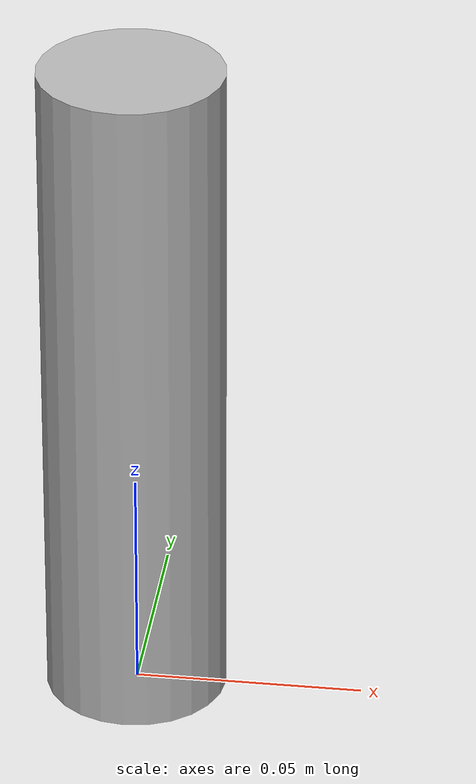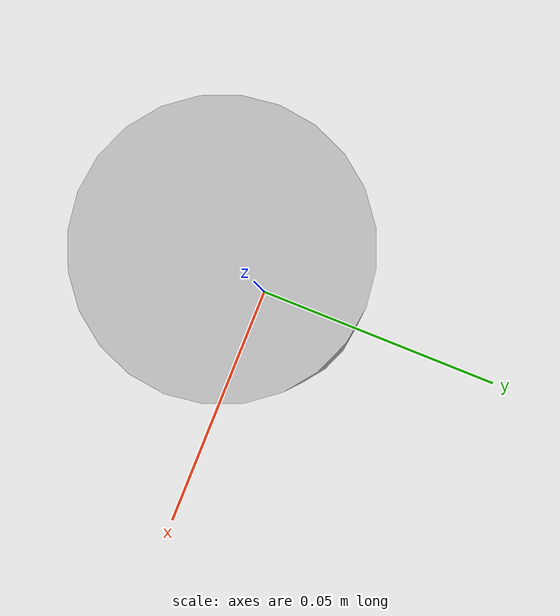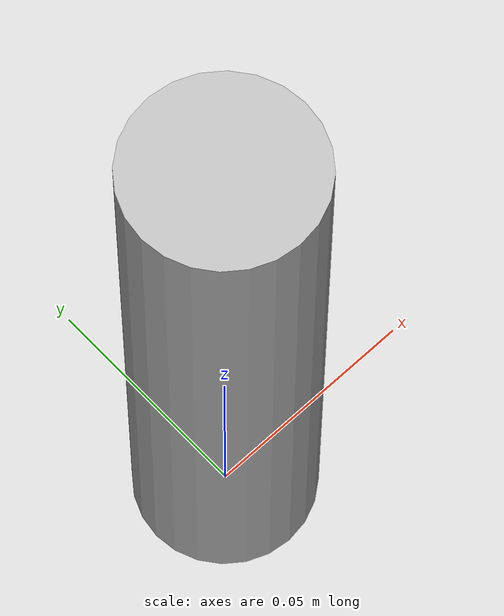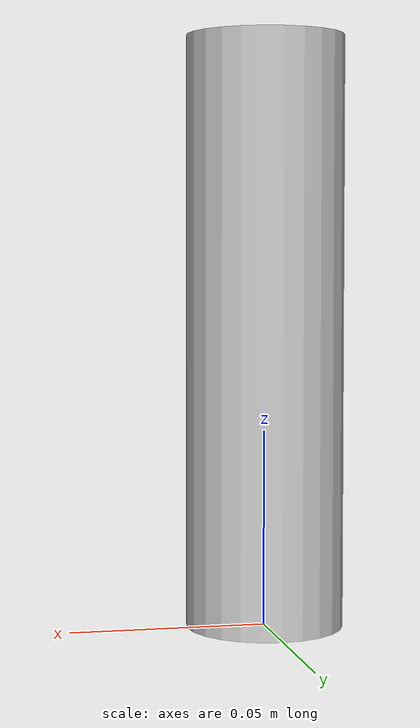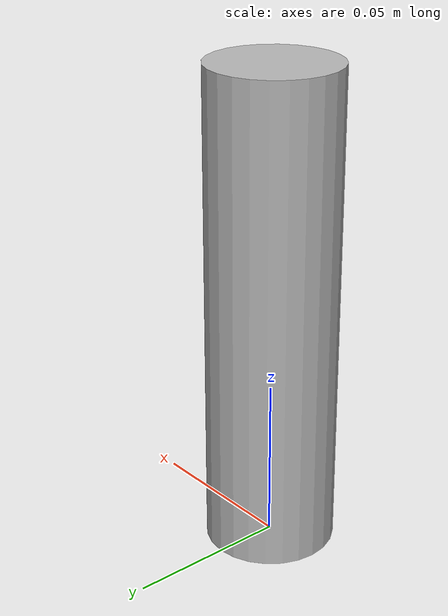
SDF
<sdf version="1.4">
  <model name="cocacola">
  <allow_auto_disable>false</allow_auto_disable>
    <static>0</static>
    <link name="link_cocacola">

     <inertial>
        <mass>0.1</mass>
        <inertia>
          <ixx>0.000198</ixx>
          <ixy>0.000000</ixy>
          <ixz>0.000000</ixz>
          <iyy>0.000198</iyy>
          <iyz>0.000000</iyz>
          <izz>0.000020</izz>
        </inertia>
      </inertial>
      <collision name="collision">
        <pose>0 0 0.075 3.1416 0 0</pose>
        <geometry>
          <cylinder>
            <radius>0.02</radius>
            <length>0.15</length>
          </cylinder>
        </geometry>
        <surface>
          <friction>
            <ode>
              <mu>20.0</mu>       <!-- FONDAMENTALE: Frizione statica -->
              <mu2>20.0</mu2>     <!-- FONDAMENTALE: Frizione dinamica -->
            </ode>
          </friction>
          <contact>
            <ode>

              <min_depth>0.01</min_depth> <!-- Permette alle dita di compenetrare la lattina di 1 mm per generare presa -->
            </ode>
          </contact>
        </surface>
      </collision>
      <visual name="visual">
        <pose>0 0 0.075 3.1416 0 0</pose>
        <geometry>
          <cylinder>
            <radius>0.02</radius>
            <length>0.15</length>
          </cylinder>
        </geometry>
        <material>
          <script>
	      <uri>model://cocacola/material/scripts</uri>
	      <uri>model://cocacola/material/textures</uri>
              <name>Custom/cocacola</name>
          </script>
        </material>
      </visual>
      <velocity_decay>
        <linear>0.000000</linear>
        <angular>0.000000</angular>
      </velocity_decay>
      <self_collide>0</self_collide>
      <kinematic>0</kinematic>
      <gravity>1</gravity>
    </link>
  </model>
</sdf>
